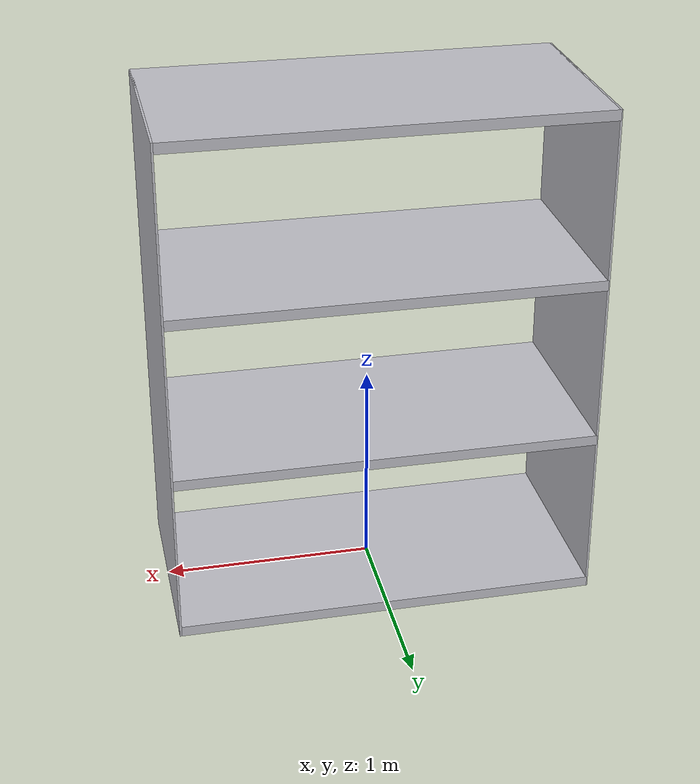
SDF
<?xml version="1.0" ?>
<sdf version="1.5">
  <model name="3-shalf">
    <static>true</static>
    <link name="link">
      <collision name="shalf1">
        <pose>0 0 0 0 0 0</pose>
        <geometry>
          <box>
            <size>2 1 0.05</size>
          </box>
        </geometry>
        <surface>
          <friction>
            <ode>
              <mu>0.6</mu>
              <mu2>0.6</mu2>
            </ode>
          </friction>
        </surface>
      </collision>
      <visual name="shalf1_visual">
        <pose>0 0 0 0 0 0</pose>
        <geometry>
          <box>
            <size>2 1 0.05</size>
          </box>
        </geometry>
        <material>
          <script>
            <uri>file://media/materials/scripts/gazebo.material</uri>
            <name>Gazebo/Silver</name>
          </script>
        </material>
      </visual>
      <collision name="shalf2">
        <pose>0 0 0.8 0 0 0</pose>
        <geometry>
          <box>
            <size>2 1 0.05</size>
          </box>
        </geometry>
        <surface>
          <friction>
            <ode>
              <mu>0.6</mu>
              <mu2>0.6</mu2>
            </ode>
          </friction>
        </surface>
      </collision>
      <visual name="shalf2_visual">
        <pose>0 0 0.8 0 0 0</pose>
        <geometry>
          <box>
            <size>2 1 0.05</size>
          </box>
        </geometry>
        <material>
          <script>
            <uri>file://media/materials/scripts/gazebo.material</uri>
            <name>Gazebo/Silver</name>
          </script>
        </material>
      </visual>
      <collision name="shalf3">
        <pose>0 0 1.6 0 0 0</pose>
        <geometry>
          <box>
            <size>2 1 0.05</size>
          </box>
        </geometry>
        <surface>
          <friction>
            <ode>
              <mu>0.6</mu>
              <mu2>0.6</mu2>
            </ode>
          </friction>
        </surface>
      </collision>
      <visual name="shalf3_visual">
        <pose>0 0 1.6 0 0 0</pose>
        <geometry>
          <box>
            <size>2 1 0.05</size>
          </box>
        </geometry>
        <material>
          <script>
            <uri>file://media/materials/scripts/gazebo.material</uri>
            <name>Gazebo/Silver</name>
          </script>
        </material>
      </visual>
      <collision name="shalf4">
        <pose>0 0 2.4 0 0 0</pose>
        <geometry>
          <box>
            <size>2 1 0.05</size>
          </box>
        </geometry>
        <surface>
          <friction>
            <ode>
              <mu>0.6</mu>
              <mu2>0.6</mu2>
            </ode>
          </friction>
        </surface>
      </collision>
      <visual name="shalf4_visual">
        <pose>0 0 2.4 0 0 0</pose>
        <geometry>
          <box>
            <size>2 1 0.05</size>
          </box>
        </geometry>
        <material>
          <script>
            <uri>file://media/materials/scripts/gazebo.material</uri>
            <name>Gazebo/Silver</name>
          </script>
        </material>
      </visual>
      <collision name="shafl_leg1">
        <pose>-1 0 1.2 0 0 1.57</pose>
        <geometry>
          <box>
            <size>1 0.01 2.45</size>
          </box>
        </geometry>
        <surface>
          <friction>
            <ode>
              <mu>0.6</mu>
              <mu2>0.6</mu2>
            </ode>
          </friction>
        </surface>
      </collision>
      <visual name="shafl_leg1_visual">
        <pose>-1 0 1.2 0 0 1.57</pose>
        <geometry>
          <box>
            <size>1 0.01 2.45</size>
          </box>
        </geometry>
        <material>
          <script>
            <uri>file://media/materials/scripts/gazebo.material</uri>
            <name>Gazebo/Silver</name>
          </script>
        </material>
      </visual>
      <collision name="shafl_leg2">
        <pose>1 0 1.2 0 0 1.57</pose>
        <geometry>
          <box>
            <size>1 0.01 2.45</size>
          </box>
        </geometry>
        <surface>
          <friction>
            <ode>
              <mu>0.6</mu>
              <mu2>0.6</mu2>
            </ode>
          </friction>
        </surface>
      </collision>
      <visual name="shafl_leg2_visual">
        <pose>1 0 1.2 0 0 1.57</pose>
        <geometry>
          <box>
            <size>1 0.01 2.45</size>
          </box>
        </geometry>
        <material>
          <script>
            <uri>file://media/materials/scripts/gazebo.material</uri>
            <name>Gazebo/Silver</name>
          </script>
        </material>
      </visual>

    </link>
  </model>
</sdf>
